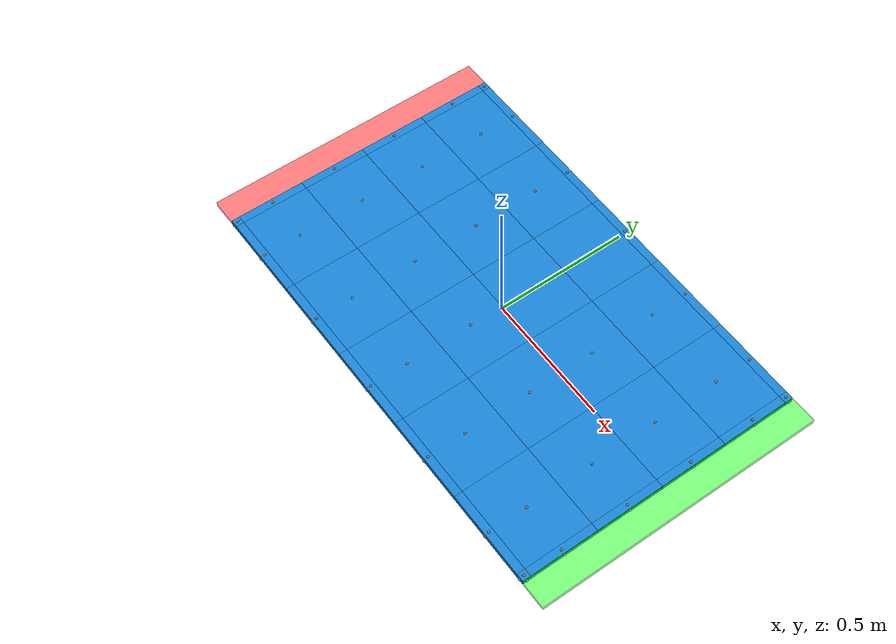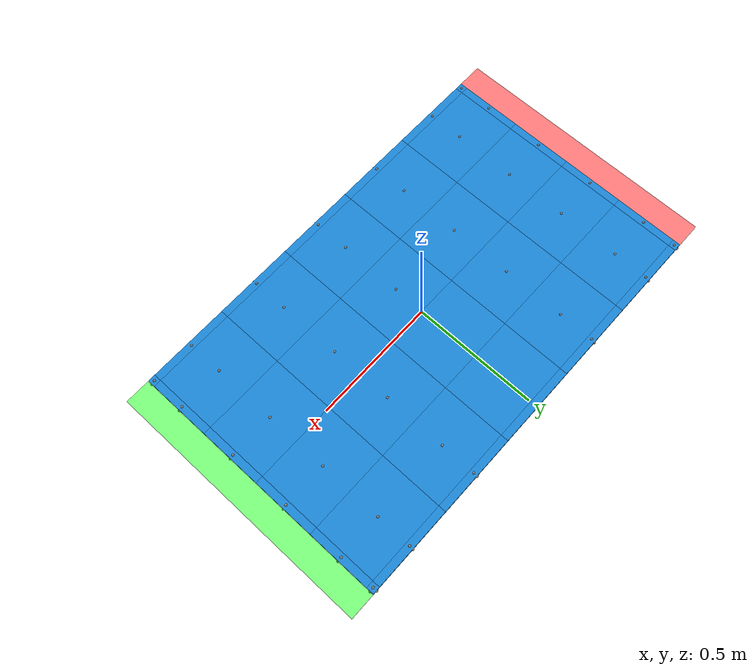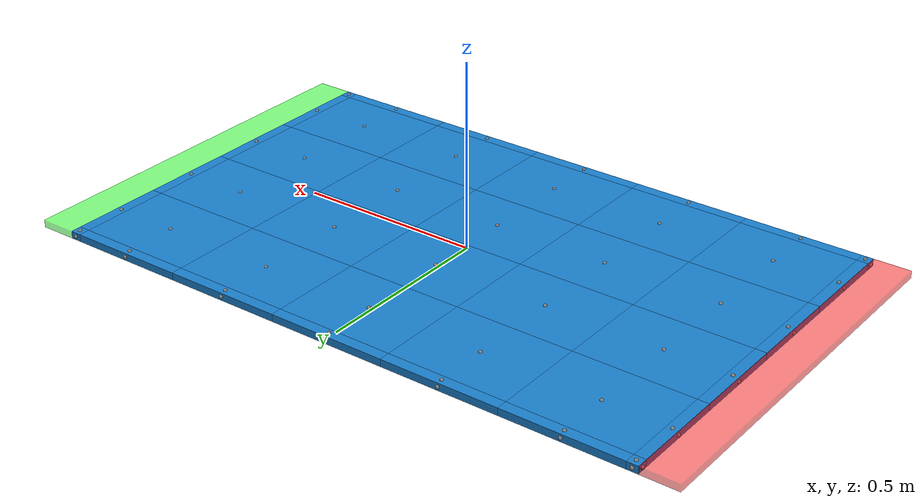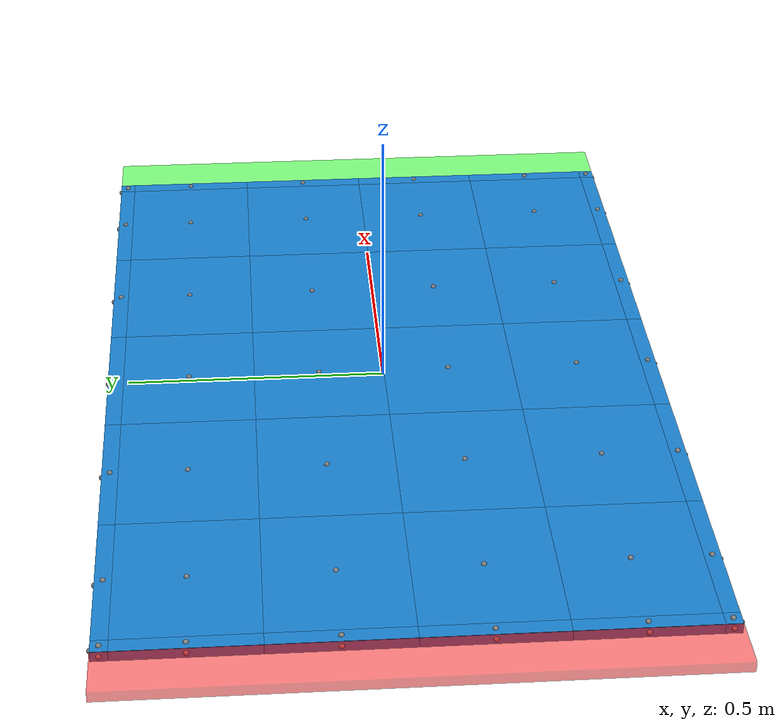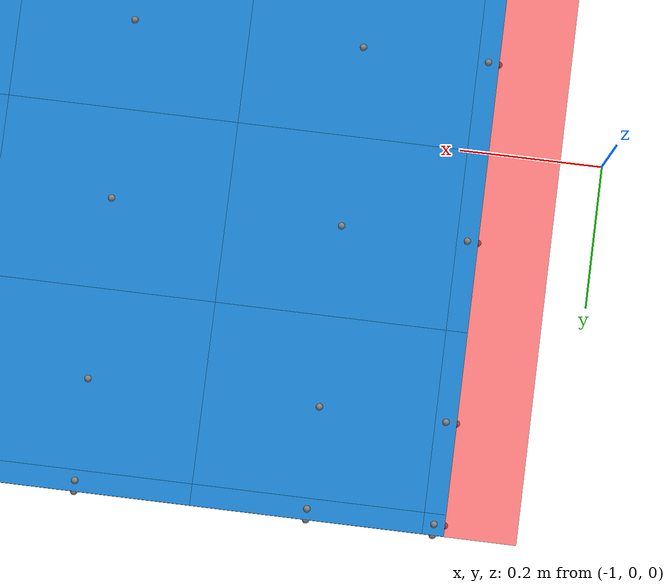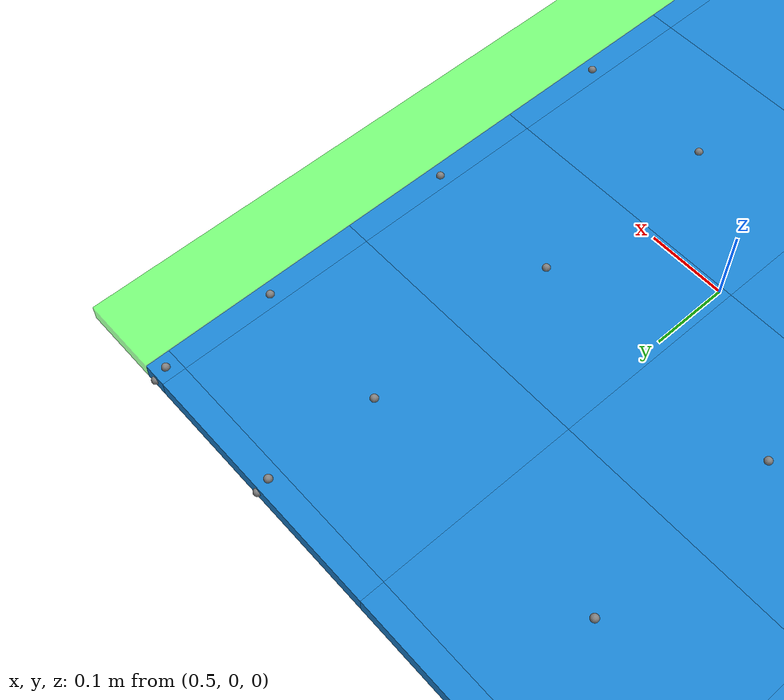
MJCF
<mujoco model="stiffness_test">
  <option integrator="implicitfast" timestep="0.001" gravity="0 0 0"><flag contact="enable"/></option>
  <default>
    <joint armature="0.01" damping="5.0"/>
    <geom friction="0.8" solref="0.02 1.0" solimp="0.9 0.95 0.001"/>
  </default>
  <worldbody>
    <light pos="0 0 5" dir="0 0 -1"/>
    <body name="BOpenCell">
      <body name="b_bopencell_0_0_0" pos="-0.82500 -0.52500 0.00000">
        <joint type="slide" axis="1 0 0"/>
        <joint type="slide" axis="0 1 0"/>
        <joint type="slide" axis="0 0 1"/>
        <joint type="ball"/>
        <geom type="box" size="0.01500 0.01500 0.01000" mass="0.002480" rgba="0.1 0.5 0.8 1.0" contype="4" conaffinity="2" friction="0.8" solref="0.002 1.0" solimp="0.9 0.95 0.001 0.5 2.0"/>
        <site name="s_BOpenCell_0_0_0_PX" pos="0.01500 0 0"/>
        <site name="s_BOpenCell_0_0_0_NX" pos="-0.01500 0 0"/>
        <site name="s_BOpenCell_0_0_0_PY" pos="0 0.01500 0"/>
        <site name="s_BOpenCell_0_0_0_NY" pos="0 -0.01500 0"/>
        <site name="s_BOpenCell_0_0_0_PZ" pos="0 0 0.01000"/>
        <site name="s_BOpenCell_0_0_0_NZ" pos="0 0 -0.01000"/>
      </body>
      <body name="b_bopencell_0_1_0" pos="-0.82500 -0.38250 0.00000">
        <joint type="slide" axis="1 0 0"/>
        <joint type="slide" axis="0 1 0"/>
        <joint type="slide" axis="0 0 1"/>
        <joint type="ball"/>
        <geom type="box" size="0.01500 0.12750 0.01000" mass="0.021081" rgba="0.1 0.5 0.8 1.0" contype="4" conaffinity="2" friction="0.8" solref="0.002 1.0" solimp="0.9 0.95 0.001 0.5 2.0"/>
        <site name="s_BOpenCell_0_1_0_PX" pos="0.01500 0 0"/>
        <site name="s_BOpenCell_0_1_0_NX" pos="-0.01500 0 0"/>
        <site name="s_BOpenCell_0_1_0_PY" pos="0 0.12750 0"/>
        <site name="s_BOpenCell_0_1_0_NY" pos="0 -0.12750 0"/>
        <site name="s_BOpenCell_0_1_0_PZ" pos="0 0 0.01000"/>
        <site name="s_BOpenCell_0_1_0_NZ" pos="0 0 -0.01000"/>
      </body>
      <body name="b_bopencell_0_2_0" pos="-0.82500 -0.12750 0.00000">
        <joint type="slide" axis="1 0 0"/>
        <joint type="slide" axis="0 1 0"/>
        <joint type="slide" axis="0 0 1"/>
        <joint type="ball"/>
        <geom type="box" size="0.01500 0.12750 0.01000" mass="0.021081" rgba="0.1 0.5 0.8 1.0" contype="4" conaffinity="2" friction="0.8" solref="0.002 1.0" solimp="0.9 0.95 0.001 0.5 2.0"/>
        <site name="s_BOpenCell_0_2_0_PX" pos="0.01500 0 0"/>
        <site name="s_BOpenCell_0_2_0_NX" pos="-0.01500 0 0"/>
        <site name="s_BOpenCell_0_2_0_PY" pos="0 0.12750 0"/>
        <site name="s_BOpenCell_0_2_0_NY" pos="0 -0.12750 0"/>
        <site name="s_BOpenCell_0_2_0_PZ" pos="0 0 0.01000"/>
        <site name="s_BOpenCell_0_2_0_NZ" pos="0 0 -0.01000"/>
      </body>
      <body name="b_bopencell_0_3_0" pos="-0.82500 0.12750 0.00000">
        <joint type="slide" axis="1 0 0"/>
        <joint type="slide" axis="0 1 0"/>
        <joint type="slide" axis="0 0 1"/>
        <joint type="ball"/>
        <geom type="box" size="0.01500 0.12750 0.01000" mass="0.021081" rgba="0.1 0.5 0.8 1.0" contype="4" conaffinity="2" friction="0.8" solref="0.002 1.0" solimp="0.9 0.95 0.001 0.5 2.0"/>
        <site name="s_BOpenCell_0_3_0_PX" pos="0.01500 0 0"/>
        <site name="s_BOpenCell_0_3_0_NX" pos="-0.01500 0 0"/>
        <site name="s_BOpenCell_0_3_0_PY" pos="0 0.12750 0"/>
        <site name="s_BOpenCell_0_3_0_NY" pos="0 -0.12750 0"/>
        <site name="s_BOpenCell_0_3_0_PZ" pos="0 0 0.01000"/>
        <site name="s_BOpenCell_0_3_0_NZ" pos="0 0 -0.01000"/>
      </body>
      <body name="b_bopencell_0_4_0" pos="-0.82500 0.38250 0.00000">
        <joint type="slide" axis="1 0 0"/>
        <joint type="slide" axis="0 1 0"/>
        <joint type="slide" axis="0 0 1"/>
        <joint type="ball"/>
        <geom type="box" size="0.01500 0.12750 0.01000" mass="0.021081" rgba="0.1 0.5 0.8 1.0" contype="4" conaffinity="2" friction="0.8" solref="0.002 1.0" solimp="0.9 0.95 0.001 0.5 2.0"/>
        <site name="s_BOpenCell_0_4_0_PX" pos="0.01500 0 0"/>
        <site name="s_BOpenCell_0_4_0_NX" pos="-0.01500 0 0"/>
        <site name="s_BOpenCell_0_4_0_PY" pos="0 0.12750 0"/>
        <site name="s_BOpenCell_0_4_0_NY" pos="0 -0.12750 0"/>
        <site name="s_BOpenCell_0_4_0_PZ" pos="0 0 0.01000"/>
        <site name="s_BOpenCell_0_4_0_NZ" pos="0 0 -0.01000"/>
      </body>
      <body name="b_bopencell_0_5_0" pos="-0.82500 0.52500 0.00000">
        <joint type="slide" axis="1 0 0"/>
        <joint type="slide" axis="0 1 0"/>
        <joint type="slide" axis="0 0 1"/>
        <joint type="ball"/>
        <geom type="box" size="0.01500 0.01500 0.01000" mass="0.002480" rgba="0.1 0.5 0.8 1.0" contype="4" conaffinity="2" friction="0.8" solref="0.002 1.0" solimp="0.9 0.95 0.001 0.5 2.0"/>
        <site name="s_BOpenCell_0_5_0_PX" pos="0.01500 0 0"/>
        <site name="s_BOpenCell_0_5_0_NX" pos="-0.01500 0 0"/>
        <site name="s_BOpenCell_0_5_0_PY" pos="0 0.01500 0"/>
        <site name="s_BOpenCell_0_5_0_NY" pos="0 -0.01500 0"/>
        <site name="s_BOpenCell_0_5_0_PZ" pos="0 0 0.01000"/>
        <site name="s_BOpenCell_0_5_0_NZ" pos="0 0 -0.01000"/>
      </body>
      <body name="b_bopencell_1_0_0" pos="-0.64800 -0.52500 0.00000">
        <joint type="slide" axis="1 0 0"/>
        <joint type="slide" axis="0 1 0"/>
        <joint type="slide" axis="0 0 1"/>
        <joint type="ball"/>
        <geom type="box" size="0.16200 0.01500 0.01000" mass="0.026786" rgba="0.1 0.5 0.8 1.0" contype="4" conaffinity="2" friction="0.8" solref="0.002 1.0" solimp="0.9 0.95 0.001 0.5 2.0"/>
        <site name="s_BOpenCell_1_0_0_PX" pos="0.16200 0 0"/>
        <site name="s_BOpenCell_1_0_0_NX" pos="-0.16200 0 0"/>
        <site name="s_BOpenCell_1_0_0_PY" pos="0 0.01500 0"/>
        <site name="s_BOpenCell_1_0_0_NY" pos="0 -0.01500 0"/>
        <site name="s_BOpenCell_1_0_0_PZ" pos="0 0 0.01000"/>
        <site name="s_BOpenCell_1_0_0_NZ" pos="0 0 -0.01000"/>
      </body>
      <body name="b_bopencell_1_1_0" pos="-0.64800 -0.38250 0.00000">
        <joint type="slide" axis="1 0 0"/>
        <joint type="slide" axis="0 1 0"/>
        <joint type="slide" axis="0 0 1"/>
        <joint type="ball"/>
        <geom type="box" size="0.16200 0.12750 0.01000" mass="0.227679" rgba="0.1 0.5 0.8 1.0" contype="4" conaffinity="2" friction="0.8" solref="0.002 1.0" solimp="0.9 0.95 0.001 0.5 2.0"/>
        <site name="s_BOpenCell_1_1_0_PX" pos="0.16200 0 0"/>
        <site name="s_BOpenCell_1_1_0_NX" pos="-0.16200 0 0"/>
        <site name="s_BOpenCell_1_1_0_PY" pos="0 0.12750 0"/>
        <site name="s_BOpenCell_1_1_0_NY" pos="0 -0.12750 0"/>
        <site name="s_BOpenCell_1_1_0_PZ" pos="0 0 0.01000"/>
        <site name="s_BOpenCell_1_1_0_NZ" pos="0 0 -0.01000"/>
      </body>
      <body name="b_bopencell_1_2_0" pos="-0.64800 -0.12750 0.00000">
        <joint type="slide" axis="1 0 0"/>
        <joint type="slide" axis="0 1 0"/>
        <joint type="slide" axis="0 0 1"/>
        <joint type="ball"/>
        <geom type="box" size="0.16200 0.12750 0.01000" mass="0.227679" rgba="0.1 0.5 0.8 1.0" contype="4" conaffinity="2" friction="0.8" solref="0.002 1.0" solimp="0.9 0.95 0.001 0.5 2.0"/>
        <site name="s_BOpenCell_1_2_0_PX" pos="0.16200 0 0"/>
        <site name="s_BOpenCell_1_2_0_NX" pos="-0.16200 0 0"/>
        <site name="s_BOpenCell_1_2_0_PY" pos="0 0.12750 0"/>
        <site name="s_BOpenCell_1_2_0_NY" pos="0 -0.12750 0"/>
        <site name="s_BOpenCell_1_2_0_PZ" pos="0 0 0.01000"/>
        <site name="s_BOpenCell_1_2_0_NZ" pos="0 0 -0.01000"/>
      </body>
      <body name="b_bopencell_1_3_0" pos="-0.64800 0.12750 0.00000">
        <joint type="slide" axis="1 0 0"/>
        <joint type="slide" axis="0 1 0"/>
        <joint type="slide" axis="0 0 1"/>
        <joint type="ball"/>
        <geom type="box" size="0.16200 0.12750 0.01000" mass="0.227679" rgba="0.1 0.5 0.8 1.0" contype="4" conaffinity="2" friction="0.8" solref="0.002 1.0" solimp="0.9 0.95 0.001 0.5 2.0"/>
        <site name="s_BOpenCell_1_3_0_PX" pos="0.16200 0 0"/>
        <site name="s_BOpenCell_1_3_0_NX" pos="-0.16200 0 0"/>
        <site name="s_BOpenCell_1_3_0_PY" pos="0 0.12750 0"/>
        <site name="s_BOpenCell_1_3_0_NY" pos="0 -0.12750 0"/>
        <site name="s_BOpenCell_1_3_0_PZ" pos="0 0 0.01000"/>
        <site name="s_BOpenCell_1_3_0_NZ" pos="0 0 -0.01000"/>
      </body>
      <body name="b_bopencell_1_4_0" pos="-0.64800 0.38250 0.00000">
        <joint type="slide" axis="1 0 0"/>
        <joint type="slide" axis="0 1 0"/>
        <joint type="slide" axis="0 0 1"/>
        <joint type="ball"/>
        <geom type="box" size="0.16200 0.12750 0.01000" mass="0.227679" rgba="0.1 0.5 0.8 1.0" contype="4" conaffinity="2" friction="0.8" solref="0.002 1.0" solimp="0.9 0.95 0.001 0.5 2.0"/>
        <site name="s_BOpenCell_1_4_0_PX" pos="0.16200 0 0"/>
        <site name="s_BOpenCell_1_4_0_NX" pos="-0.16200 0 0"/>
        <site name="s_BOpenCell_1_4_0_PY" pos="0 0.12750 0"/>
        <site name="s_BOpenCell_1_4_0_NY" pos="0 -0.12750 0"/>
        <site name="s_BOpenCell_1_4_0_PZ" pos="0 0 0.01000"/>
        <site name="s_BOpenCell_1_4_0_NZ" pos="0 0 -0.01000"/>
      </body>
      <body name="b_bopencell_1_5_0" pos="-0.64800 0.52500 0.00000">
        <joint type="slide" axis="1 0 0"/>
        <joint type="slide" axis="0 1 0"/>
        <joint type="slide" axis="0 0 1"/>
        <joint type="ball"/>
        <geom type="box" size="0.16200 0.01500 0.01000" mass="0.026786" rgba="0.1 0.5 0.8 1.0" contype="4" conaffinity="2" friction="0.8" solref="0.002 1.0" solimp="0.9 0.95 0.001 0.5 2.0"/>
        <site name="s_BOpenCell_1_5_0_PX" pos="0.16200 0 0"/>
        <site name="s_BOpenCell_1_5_0_NX" pos="-0.16200 0 0"/>
        <site name="s_BOpenCell_1_5_0_PY" pos="0 0.01500 0"/>
        <site name="s_BOpenCell_1_5_0_NY" pos="0 -0.01500 0"/>
        <site name="s_BOpenCell_1_5_0_PZ" pos="0 0 0.01000"/>
        <site name="s_BOpenCell_1_5_0_NZ" pos="0 0 -0.01000"/>
      </body>
      <body name="b_bopencell_2_0_0" pos="-0.32400 -0.52500 0.00000">
        <joint type="slide" axis="1 0 0"/>
        <joint type="slide" axis="0 1 0"/>
        <joint type="slide" axis="0 0 1"/>
        <joint type="ball"/>
        <geom type="box" size="0.16200 0.01500 0.01000" mass="0.026786" rgba="0.1 0.5 0.8 1.0" contype="4" conaffinity="2" friction="0.8" solref="0.002 1.0" solimp="0.9 0.95 0.001 0.5 2.0"/>
        <site name="s_BOpenCell_2_0_0_PX" pos="0.16200 0 0"/>
        <site name="s_BOpenCell_2_0_0_NX" pos="-0.16200 0 0"/>
        <site name="s_BOpenCell_2_0_0_PY" pos="0 0.01500 0"/>
        <site name="s_BOpenCell_2_0_0_NY" pos="0 -0.01500 0"/>
        <site name="s_BOpenCell_2_0_0_PZ" pos="0 0 0.01000"/>
        <site name="s_BOpenCell_2_0_0_NZ" pos="0 0 -0.01000"/>
      </body>
      <body name="b_bopencell_2_1_0" pos="-0.32400 -0.38250 0.00000">
        <joint type="slide" axis="1 0 0"/>
        <joint type="slide" axis="0 1 0"/>
        <joint type="slide" axis="0 0 1"/>
        <joint type="ball"/>
        <geom type="box" size="0.16200 0.12750 0.01000" mass="0.227679" rgba="0.1 0.5 0.8 1.0" contype="4" conaffinity="2" friction="0.8" solref="0.002 1.0" solimp="0.9 0.95 0.001 0.5 2.0"/>
        <site name="s_BOpenCell_2_1_0_PX" pos="0.16200 0 0"/>
        <site name="s_BOpenCell_2_1_0_NX" pos="-0.16200 0 0"/>
        <site name="s_BOpenCell_2_1_0_PY" pos="0 0.12750 0"/>
        <site name="s_BOpenCell_2_1_0_NY" pos="0 -0.12750 0"/>
        <site name="s_BOpenCell_2_1_0_PZ" pos="0 0 0.01000"/>
        <site name="s_BOpenCell_2_1_0_NZ" pos="0 0 -0.01000"/>
      </body>
      <body name="b_bopencell_2_2_0" pos="-0.32400 -0.12750 0.00000">
        <joint type="slide" axis="1 0 0"/>
        <joint type="slide" axis="0 1 0"/>
        <joint type="slide" axis="0 0 1"/>
        <joint type="ball"/>
        <geom type="box" size="0.16200 0.12750 0.01000" mass="0.227679" rgba="0.1 0.5 0.8 1.0" contype="4" conaffinity="2" friction="0.8" solref="0.002 1.0" solimp="0.9 0.95 0.001 0.5 2.0"/>
        <site name="s_BOpenCell_2_2_0_PX" pos="0.16200 0 0"/>
        <site name="s_BOpenCell_2_2_0_NX" pos="-0.16200 0 0"/>
        <site name="s_BOpenCell_2_2_0_PY" pos="0 0.12750 0"/>
        <site name="s_BOpenCell_2_2_0_NY" pos="0 -0.12750 0"/>
        <site name="s_BOpenCell_2_2_0_PZ" pos="0 0 0.01000"/>
        <site name="s_BOpenCell_2_2_0_NZ" pos="0 0 -0.01000"/>
      </body>
      <body name="b_bopencell_2_3_0" pos="-0.32400 0.12750 0.00000">
        <joint type="slide" axis="1 0 0"/>
        <joint type="slide" axis="0 1 0"/>
        <joint type="slide" axis="0 0 1"/>
        <joint type="ball"/>
        <geom type="box" size="0.16200 0.12750 0.01000" mass="0.227679" rgba="0.1 0.5 0.8 1.0" contype="4" conaffinity="2" friction="0.8" solref="0.002 1.0" solimp="0.9 0.95 0.001 0.5 2.0"/>
        <site name="s_BOpenCell_2_3_0_PX" pos="0.16200 0 0"/>
        <site name="s_BOpenCell_2_3_0_NX" pos="-0.16200 0 0"/>
        <site name="s_BOpenCell_2_3_0_PY" pos="0 0.12750 0"/>
        <site name="s_BOpenCell_2_3_0_NY" pos="0 -0.12750 0"/>
        <site name="s_BOpenCell_2_3_0_PZ" pos="0 0 0.01000"/>
        <site name="s_BOpenCell_2_3_0_NZ" pos="0 0 -0.01000"/>
      </body>
      <body name="b_bopencell_2_4_0" pos="-0.32400 0.38250 0.00000">
        <joint type="slide" axis="1 0 0"/>
        <joint type="slide" axis="0 1 0"/>
        <joint type="slide" axis="0 0 1"/>
        <joint type="ball"/>
        <geom type="box" size="0.16200 0.12750 0.01000" mass="0.227679" rgba="0.1 0.5 0.8 1.0" contype="4" conaffinity="2" friction="0.8" solref="0.002 1.0" solimp="0.9 0.95 0.001 0.5 2.0"/>
        <site name="s_BOpenCell_2_4_0_PX" pos="0.16200 0 0"/>
        <site name="s_BOpenCell_2_4_0_NX" pos="-0.16200 0 0"/>
        <site name="s_BOpenCell_2_4_0_PY" pos="0 0.12750 0"/>
        <site name="s_BOpenCell_2_4_0_NY" pos="0 -0.12750 0"/>
        <site name="s_BOpenCell_2_4_0_PZ" pos="0 0 0.01000"/>
        <site name="s_BOpenCell_2_4_0_NZ" pos="0 0 -0.01000"/>
      </body>
      <body name="b_bopencell_2_5_0" pos="-0.32400 0.52500 0.00000">
        <joint type="slide" axis="1 0 0"/>
        <joint type="slide" axis="0 1 0"/>
        <joint type="slide" axis="0 0 1"/>
        <joint type="ball"/>
        <geom type="box" size="0.16200 0.01500 0.01000" mass="0.026786" rgba="0.1 0.5 0.8 1.0" contype="4" conaffinity="2" friction="0.8" solref="0.002 1.0" solimp="0.9 0.95 0.001 0.5 2.0"/>
        <site name="s_BOpenCell_2_5_0_PX" pos="0.16200 0 0"/>
        <site name="s_BOpenCell_2_5_0_NX" pos="-0.16200 0 0"/>
        <site name="s_BOpenCell_2_5_0_PY" pos="0 0.01500 0"/>
        <site name="s_BOpenCell_2_5_0_NY" pos="0 -0.01500 0"/>
        <site name="s_BOpenCell_2_5_0_PZ" pos="0 0 0.01000"/>
        <site name="s_BOpenCell_2_5_0_NZ" pos="0 0 -0.01000"/>
      </body>
      <body name="b_bopencell_3_0_0" pos="0.00000 -0.52500 0.00000">
        <joint type="slide" axis="1 0 0"/>
        <joint type="slide" axis="0 1 0"/>
        <joint type="slide" axis="0 0 1"/>
        <joint type="ball"/>
        <geom type="box" size="0.16200 0.01500 0.01000" mass="0.026786" rgba="0.1 0.5 0.8 1.0" contype="4" conaffinity="2" friction="0.8" solref="0.002 1.0" solimp="0.9 0.95 0.001 0.5 2.0"/>
        <site name="s_BOpenCell_3_0_0_PX" pos="0.16200 0 0"/>
        <site name="s_BOpenCell_3_0_0_NX" pos="-0.16200 0 0"/>
        <site name="s_BOpenCell_3_0_0_PY" pos="0 0.01500 0"/>
        <site name="s_BOpenCell_3_0_0_NY" pos="0 -0.01500 0"/>
        <site name="s_BOpenCell_3_0_0_PZ" pos="0 0 0.01000"/>
        <site name="s_BOpenCell_3_0_0_NZ" pos="0 0 -0.01000"/>
      </body>
      <body name="b_bopencell_3_1_0" pos="0.00000 -0.38250 0.00000">
        <joint type="slide" axis="1 0 0"/>
        <joint type="slide" axis="0 1 0"/>
        <joint type="slide" axis="0 0 1"/>
        <joint type="ball"/>
        <geom type="box" size="0.16200 0.12750 0.01000" mass="0.227679" rgba="0.1 0.5 0.8 1.0" contype="4" conaffinity="2" friction="0.8" solref="0.002 1.0" solimp="0.9 0.95 0.001 0.5 2.0"/>
        <site name="s_BOpenCell_3_1_0_PX" pos="0.16200 0 0"/>
        <site name="s_BOpenCell_3_1_0_NX" pos="-0.16200 0 0"/>
        <site name="s_BOpenCell_3_1_0_PY" pos="0 0.12750 0"/>
        <site name="s_BOpenCell_3_1_0_NY" pos="0 -0.12750 0"/>
        <site name="s_BOpenCell_3_1_0_PZ" pos="0 0 0.01000"/>
        <site name="s_BOpenCell_3_1_0_NZ" pos="0 0 -0.01000"/>
      </body>
      <body name="b_bopencell_3_2_0" pos="0.00000 -0.12750 0.00000">
        <joint type="slide" axis="1 0 0"/>
        <joint type="slide" axis="0 1 0"/>
        <joint type="slide" axis="0 0 1"/>
        <joint type="ball"/>
        <geom type="box" size="0.16200 0.12750 0.01000" mass="0.227679" rgba="0.1 0.5 0.8 1.0" contype="4" conaffinity="2" friction="0.8" solref="0.002 1.0" solimp="0.9 0.95 0.001 0.5 2.0"/>
        <site name="s_BOpenCell_3_2_0_PX" pos="0.16200 0 0"/>
        <site name="s_BOpenCell_3_2_0_NX" pos="-0.16200 0 0"/>
        <site name="s_BOpenCell_3_2_0_PY" pos="0 0.12750 0"/>
        <site name="s_BOpenCell_3_2_0_NY" pos="0 -0.12750 0"/>
        <site name="s_BOpenCell_3_2_0_PZ" pos="0 0 0.01000"/>
        <site name="s_BOpenCell_3_2_0_NZ" pos="0 0 -0.01000"/>
      </body>
      <body name="b_bopencell_3_3_0" pos="0.00000 0.12750 0.00000">
        <joint type="slide" axis="1 0 0"/>
        <joint type="slide" axis="0 1 0"/>
        <joint type="slide" axis="0 0 1"/>
        <joint type="ball"/>
        <geom type="box" size="0.16200 0.12750 0.01000" mass="0.227679" rgba="0.1 0.5 0.8 1.0" contype="4" conaffinity="2" friction="0.8" solref="0.002 1.0" solimp="0.9 0.95 0.001 0.5 2.0"/>
        <site name="s_BOpenCell_3_3_0_PX" pos="0.16200 0 0"/>
        <site name="s_BOpenCell_3_3_0_NX" pos="-0.16200 0 0"/>
        <site name="s_BOpenCell_3_3_0_PY" pos="0 0.12750 0"/>
        <site name="s_BOpenCell_3_3_0_NY" pos="0 -0.12750 0"/>
        <site name="s_BOpenCell_3_3_0_PZ" pos="0 0 0.01000"/>
        <site name="s_BOpenCell_3_3_0_NZ" pos="0 0 -0.01000"/>
      </body>
      <body name="b_bopencell_3_4_0" pos="0.00000 0.38250 0.00000">
        <joint type="slide" axis="1 0 0"/>
        <joint type="slide" axis="0 1 0"/>
        <joint type="slide" axis="0 0 1"/>
        <joint type="ball"/>
        <geom type="box" size="0.16200 0.12750 0.01000" mass="0.227679" rgba="0.1 0.5 0.8 1.0" contype="4" conaffinity="2" friction="0.8" solref="0.002 1.0" solimp="0.9 0.95 0.001 0.5 2.0"/>
        <site name="s_BOpenCell_3_4_0_PX" pos="0.16200 0 0"/>
        <site name="s_BOpenCell_3_4_0_NX" pos="-0.16200 0 0"/>
        <site name="s_BOpenCell_3_4_0_PY" pos="0 0.12750 0"/>
        <site name="s_BOpenCell_3_4_0_NY" pos="0 -0.12750 0"/>
        <site name="s_BOpenCell_3_4_0_PZ" pos="0 0 0.01000"/>
        <site name="s_BOpenCell_3_4_0_NZ" pos="0 0 -0.01000"/>
      </body>
      <body name="b_bopencell_3_5_0" pos="0.00000 0.52500 0.00000">
        <joint type="slide" axis="1 0 0"/>
        <joint type="slide" axis="0 1 0"/>
        <joint type="slide" axis="0 0 1"/>
        <joint type="ball"/>
        <geom type="box" size="0.16200 0.01500 0.01000" mass="0.026786" rgba="0.1 0.5 0.8 1.0" contype="4" conaffinity="2" friction="0.8" solref="0.002 1.0" solimp="0.9 0.95 0.001 0.5 2.0"/>
        <site name="s_BOpenCell_3_5_0_PX" pos="0.16200 0 0"/>
        <site name="s_BOpenCell_3_5_0_NX" pos="-0.16200 0 0"/>
        <site name="s_BOpenCell_3_5_0_PY" pos="0 0.01500 0"/>
        <site name="s_BOpenCell_3_5_0_NY" pos="0 -0.01500 0"/>
        <site name="s_BOpenCell_3_5_0_PZ" pos="0 0 0.01000"/>
        <site name="s_BOpenCell_3_5_0_NZ" pos="0 0 -0.01000"/>
      </body>
      <body name="b_bopencell_4_0_0" pos="0.32400 -0.52500 0.00000">
        <joint type="slide" axis="1 0 0"/>
        <joint type="slide" axis="0 1 0"/>
        <joint type="slide" axis="0 0 1"/>
        <joint type="ball"/>
        <geom type="box" size="0.16200 0.01500 0.01000" mass="0.026786" rgba="0.1 0.5 0.8 1.0" contype="4" conaffinity="2" friction="0.8" solref="0.002 1.0" solimp="0.9 0.95 0.001 0.5 2.0"/>
        <site name="s_BOpenCell_4_0_0_PX" pos="0.16200 0 0"/>
        <site name="s_BOpenCell_4_0_0_NX" pos="-0.16200 0 0"/>
        <site name="s_BOpenCell_4_0_0_PY" pos="0 0.01500 0"/>
        <site name="s_BOpenCell_4_0_0_NY" pos="0 -0.01500 0"/>
        <site name="s_BOpenCell_4_0_0_PZ" pos="0 0 0.01000"/>
        <site name="s_BOpenCell_4_0_0_NZ" pos="0 0 -0.01000"/>
      </body>
      <body name="b_bopencell_4_1_0" pos="0.32400 -0.38250 0.00000">
        <joint type="slide" axis="1 0 0"/>
        <joint type="slide" axis="0 1 0"/>
        <joint type="slide" axis="0 0 1"/>
        <joint type="ball"/>
        <geom type="box" size="0.16200 0.12750 0.01000" mass="0.227679" rgba="0.1 0.5 0.8 1.0" contype="4" conaffinity="2" friction="0.8" solref="0.002 1.0" solimp="0.9 0.95 0.001 0.5 2.0"/>
        <site name="s_BOpenCell_4_1_0_PX" pos="0.16200 0 0"/>
        <site name="s_BOpenCell_4_1_0_NX" pos="-0.16200 0 0"/>
        <site name="s_BOpenCell_4_1_0_PY" pos="0 0.12750 0"/>
        <site name="s_BOpenCell_4_1_0_NY" pos="0 -0.12750 0"/>
        <site name="s_BOpenCell_4_1_0_PZ" pos="0 0 0.01000"/>
        <site name="s_BOpenCell_4_1_0_NZ" pos="0 0 -0.01000"/>
      </body>
      <body name="b_bopencell_4_2_0" pos="0.32400 -0.12750 0.00000">
        <joint type="slide" axis="1 0 0"/>
        <joint type="slide" axis="0 1 0"/>
        <joint type="slide" axis="0 0 1"/>
        <joint type="ball"/>
        <geom type="box" size="0.16200 0.12750 0.01000" mass="0.227679" rgba="0.1 0.5 0.8 1.0" contype="4" conaffinity="2" friction="0.8" solref="0.002 1.0" solimp="0.9 0.95 0.001 0.5 2.0"/>
        <site name="s_BOpenCell_4_2_0_PX" pos="0.16200 0 0"/>
        <site name="s_BOpenCell_4_2_0_NX" pos="-0.16200 0 0"/>
        <site name="s_BOpenCell_4_2_0_PY" pos="0 0.12750 0"/>
        <site name="s_BOpenCell_4_2_0_NY" pos="0 -0.12750 0"/>
        <site name="s_BOpenCell_4_2_0_PZ" pos="0 0 0.01000"/>
        <site name="s_BOpenCell_4_2_0_NZ" pos="0 0 -0.01000"/>
      </body>
      <body name="b_bopencell_4_3_0" pos="0.32400 0.12750 0.00000">
        <joint type="slide" axis="1 0 0"/>
        <joint type="slide" axis="0 1 0"/>
        <joint type="slide" axis="0 0 1"/>
        <joint type="ball"/>
        <geom type="box" size="0.16200 0.12750 0.01000" mass="0.227679" rgba="0.1 0.5 0.8 1.0" contype="4" conaffinity="2" friction="0.8" solref="0.002 1.0" solimp="0.9 0.95 0.001 0.5 2.0"/>
        <site name="s_BOpenCell_4_3_0_PX" pos="0.16200 0 0"/>
        <site name="s_BOpenCell_4_3_0_NX" pos="-0.16200 0 0"/>
        <site name="s_BOpenCell_4_3_0_PY" pos="0 0.12750 0"/>
        <site name="s_BOpenCell_4_3_0_NY" pos="0 -0.12750 0"/>
        <site name="s_BOpenCell_4_3_0_PZ" pos="0 0 0.01000"/>
        <site name="s_BOpenCell_4_3_0_NZ" pos="0 0 -0.01000"/>
      </body>
      <body name="b_bopencell_4_4_0" pos="0.32400 0.38250 0.00000">
        <joint type="slide" axis="1 0 0"/>
        <joint type="slide" axis="0 1 0"/>
        <joint type="slide" axis="0 0 1"/>
        <joint type="ball"/>
        <geom type="box" size="0.16200 0.12750 0.01000" mass="0.227679" rgba="0.1 0.5 0.8 1.0" contype="4" conaffinity="2" friction="0.8" solref="0.002 1.0" solimp="0.9 0.95 0.001 0.5 2.0"/>
        <site name="s_BOpenCell_4_4_0_PX" pos="0.16200 0 0"/>
        <site name="s_BOpenCell_4_4_0_NX" pos="-0.16200 0 0"/>
        <site name="s_BOpenCell_4_4_0_PY" pos="0 0.12750 0"/>
        <site name="s_BOpenCell_4_4_0_NY" pos="0 -0.12750 0"/>
        <site name="s_BOpenCell_4_4_0_PZ" pos="0 0 0.01000"/>
        <site name="s_BOpenCell_4_4_0_NZ" pos="0 0 -0.01000"/>
      </body>
      <body name="b_bopencell_4_5_0" pos="0.32400 0.52500 0.00000">
        <joint type="slide" axis="1 0 0"/>
        <joint type="slide" axis="0 1 0"/>
        <joint type="slide" axis="0 0 1"/>
        <joint type="ball"/>
        <geom type="box" size="0.16200 0.01500 0.01000" mass="0.026786" rgba="0.1 0.5 0.8 1.0" contype="4" conaffinity="2" friction="0.8" solref="0.002 1.0" solimp="0.9 0.95 0.001 0.5 2.0"/>
        <site name="s_BOpenCell_4_5_0_PX" pos="0.16200 0 0"/>
        <site name="s_BOpenCell_4_5_0_NX" pos="-0.16200 0 0"/>
        <site name="s_BOpenCell_4_5_0_PY" pos="0 0.01500 0"/>
        <site name="s_BOpenCell_4_5_0_NY" pos="0 -0.01500 0"/>
        <site name="s_BOpenCell_4_5_0_PZ" pos="0 0 0.01000"/>
        <site name="s_BOpenCell_4_5_0_NZ" pos="0 0 -0.01000"/>
      </body>
      <body name="b_bopencell_5_0_0" pos="0.64800 -0.52500 0.00000">
        <joint type="slide" axis="1 0 0"/>
        <joint type="slide" axis="0 1 0"/>
        <joint type="slide" axis="0 0 1"/>
        <joint type="ball"/>
        <geom type="box" size="0.16200 0.01500 0.01000" mass="0.026786" rgba="0.1 0.5 0.8 1.0" contype="4" conaffinity="2" friction="0.8" solref="0.002 1.0" solimp="0.9 0.95 0.001 0.5 2.0"/>
        <site name="s_BOpenCell_5_0_0_PX" pos="0.16200 0 0"/>
        <site name="s_BOpenCell_5_0_0_NX" pos="-0.16200 0 0"/>
        <site name="s_BOpenCell_5_0_0_PY" pos="0 0.01500 0"/>
        <site name="s_BOpenCell_5_0_0_NY" pos="0 -0.01500 0"/>
        <site name="s_BOpenCell_5_0_0_PZ" pos="0 0 0.01000"/>
        <site name="s_BOpenCell_5_0_0_NZ" pos="0 0 -0.01000"/>
      </body>
      <body name="b_bopencell_5_1_0" pos="0.64800 -0.38250 0.00000">
        <joint type="slide" axis="1 0 0"/>
        <joint type="slide" axis="0 1 0"/>
        <joint type="slide" axis="0 0 1"/>
        <joint type="ball"/>
        <geom type="box" size="0.16200 0.12750 0.01000" mass="0.227679" rgba="0.1 0.5 0.8 1.0" contype="4" conaffinity="2" friction="0.8" solref="0.002 1.0" solimp="0.9 0.95 0.001 0.5 2.0"/>
        <site name="s_BOpenCell_5_1_0_PX" pos="0.16200 0 0"/>
        <site name="s_BOpenCell_5_1_0_NX" pos="-0.16200 0 0"/>
        <site name="s_BOpenCell_5_1_0_PY" pos="0 0.12750 0"/>
        <site name="s_BOpenCell_5_1_0_NY" pos="0 -0.12750 0"/>
        <site name="s_BOpenCell_5_1_0_PZ" pos="0 0 0.01000"/>
        <site name="s_BOpenCell_5_1_0_NZ" pos="0 0 -0.01000"/>
      </body>
      <body name="b_bopencell_5_2_0" pos="0.64800 -0.12750 0.00000">
        <joint type="slide" axis="1 0 0"/>
        <joint type="slide" axis="0 1 0"/>
        <joint type="slide" axis="0 0 1"/>
        <joint type="ball"/>
        <geom type="box" size="0.16200 0.12750 0.01000" mass="0.227679" rgba="0.1 0.5 0.8 1.0" contype="4" conaffinity="2" friction="0.8" solref="0.002 1.0" solimp="0.9 0.95 0.001 0.5 2.0"/>
        <site name="s_BOpenCell_5_2_0_PX" pos="0.16200 0 0"/>
        <site name="s_BOpenCell_5_2_0_NX" pos="-0.16200 0 0"/>
        <site name="s_BOpenCell_5_2_0_PY" pos="0 0.12750 0"/>
        <site name="s_BOpenCell_5_2_0_NY" pos="0 -0.12750 0"/>
        <site name="s_BOpenCell_5_2_0_PZ" pos="0 0 0.01000"/>
        <site name="s_BOpenCell_5_2_0_NZ" pos="0 0 -0.01000"/>
      </body>
      <body name="b_bopencell_5_3_0" pos="0.64800 0.12750 0.00000">
        <joint type="slide" axis="1 0 0"/>
        <joint type="slide" axis="0 1 0"/>
        <joint type="slide" axis="0 0 1"/>
        <joint type="ball"/>
        <geom type="box" size="0.16200 0.12750 0.01000" mass="0.227679" rgba="0.1 0.5 0.8 1.0" contype="4" conaffinity="2" friction="0.8" solref="0.002 1.0" solimp="0.9 0.95 0.001 0.5 2.0"/>
        <site name="s_BOpenCell_5_3_0_PX" pos="0.16200 0 0"/>
        <site name="s_BOpenCell_5_3_0_NX" pos="-0.16200 0 0"/>
        <site name="s_BOpenCell_5_3_0_PY" pos="0 0.12750 0"/>
        <site name="s_BOpenCell_5_3_0_NY" pos="0 -0.12750 0"/>
        <site name="s_BOpenCell_5_3_0_PZ" pos="0 0 0.01000"/>
        <site name="s_BOpenCell_5_3_0_NZ" pos="0 0 -0.01000"/>
      </body>
      <body name="b_bopencell_5_4_0" pos="0.64800 0.38250 0.00000">
        <joint type="slide" axis="1 0 0"/>
        <joint type="slide" axis="0 1 0"/>
        <joint type="slide" axis="0 0 1"/>
        <joint type="ball"/>
        <geom type="box" size="0.16200 0.12750 0.01000" mass="0.227679" rgba="0.1 0.5 0.8 1.0" contype="4" conaffinity="2" friction="0.8" solref="0.002 1.0" solimp="0.9 0.95 0.001 0.5 2.0"/>
        <site name="s_BOpenCell_5_4_0_PX" pos="0.16200 0 0"/>
        <site name="s_BOpenCell_5_4_0_NX" pos="-0.16200 0 0"/>
        <site name="s_BOpenCell_5_4_0_PY" pos="0 0.12750 0"/>
        <site name="s_BOpenCell_5_4_0_NY" pos="0 -0.12750 0"/>
        <site name="s_BOpenCell_5_4_0_PZ" pos="0 0 0.01000"/>
        <site name="s_BOpenCell_5_4_0_NZ" pos="0 0 -0.01000"/>
      </body>
      <body name="b_bopencell_5_5_0" pos="0.64800 0.52500 0.00000">
        <joint type="slide" axis="1 0 0"/>
        <joint type="slide" axis="0 1 0"/>
        <joint type="slide" axis="0 0 1"/>
        <joint type="ball"/>
        <geom type="box" size="0.16200 0.01500 0.01000" mass="0.026786" rgba="0.1 0.5 0.8 1.0" contype="4" conaffinity="2" friction="0.8" solref="0.002 1.0" solimp="0.9 0.95 0.001 0.5 2.0"/>
        <site name="s_BOpenCell_5_5_0_PX" pos="0.16200 0 0"/>
        <site name="s_BOpenCell_5_5_0_NX" pos="-0.16200 0 0"/>
        <site name="s_BOpenCell_5_5_0_PY" pos="0 0.01500 0"/>
        <site name="s_BOpenCell_5_5_0_NY" pos="0 -0.01500 0"/>
        <site name="s_BOpenCell_5_5_0_PZ" pos="0 0 0.01000"/>
        <site name="s_BOpenCell_5_5_0_NZ" pos="0 0 -0.01000"/>
      </body>
      <body name="b_bopencell_6_0_0" pos="0.82500 -0.52500 0.00000">
        <joint type="slide" axis="1 0 0"/>
        <joint type="slide" axis="0 1 0"/>
        <joint type="slide" axis="0 0 1"/>
        <joint type="ball"/>
        <geom type="box" size="0.01500 0.01500 0.01000" mass="0.002480" rgba="0.1 0.5 0.8 1.0" contype="4" conaffinity="2" friction="0.8" solref="0.002 1.0" solimp="0.9 0.95 0.001 0.5 2.0"/>
        <site name="s_BOpenCell_6_0_0_PX" pos="0.01500 0 0"/>
        <site name="s_BOpenCell_6_0_0_NX" pos="-0.01500 0 0"/>
        <site name="s_BOpenCell_6_0_0_PY" pos="0 0.01500 0"/>
        <site name="s_BOpenCell_6_0_0_NY" pos="0 -0.01500 0"/>
        <site name="s_BOpenCell_6_0_0_PZ" pos="0 0 0.01000"/>
        <site name="s_BOpenCell_6_0_0_NZ" pos="0 0 -0.01000"/>
      </body>
      <body name="b_bopencell_6_1_0" pos="0.82500 -0.38250 0.00000">
        <joint type="slide" axis="1 0 0"/>
        <joint type="slide" axis="0 1 0"/>
        <joint type="slide" axis="0 0 1"/>
        <joint type="ball"/>
        <geom type="box" size="0.01500 0.12750 0.01000" mass="0.021081" rgba="0.1 0.5 0.8 1.0" contype="4" conaffinity="2" friction="0.8" solref="0.002 1.0" solimp="0.9 0.95 0.001 0.5 2.0"/>
        <site name="s_BOpenCell_6_1_0_PX" pos="0.01500 0 0"/>
        <site name="s_BOpenCell_6_1_0_NX" pos="-0.01500 0 0"/>
        <site name="s_BOpenCell_6_1_0_PY" pos="0 0.12750 0"/>
        <site name="s_BOpenCell_6_1_0_NY" pos="0 -0.12750 0"/>
        <site name="s_BOpenCell_6_1_0_PZ" pos="0 0 0.01000"/>
        <site name="s_BOpenCell_6_1_0_NZ" pos="0 0 -0.01000"/>
      </body>
      <body name="b_bopencell_6_2_0" pos="0.82500 -0.12750 0.00000">
        <joint type="slide" axis="1 0 0"/>
        <joint type="slide" axis="0 1 0"/>
        <joint type="slide" axis="0 0 1"/>
        <joint type="ball"/>
        <geom type="box" size="0.01500 0.12750 0.01000" mass="0.021081" rgba="0.1 0.5 0.8 1.0" contype="4" conaffinity="2" friction="0.8" solref="0.002 1.0" solimp="0.9 0.95 0.001 0.5 2.0"/>
        <site name="s_BOpenCell_6_2_0_PX" pos="0.01500 0 0"/>
        <site name="s_BOpenCell_6_2_0_NX" pos="-0.01500 0 0"/>
        <site name="s_BOpenCell_6_2_0_PY" pos="0 0.12750 0"/>
        <site name="s_BOpenCell_6_2_0_NY" pos="0 -0.12750 0"/>
        <site name="s_BOpenCell_6_2_0_PZ" pos="0 0 0.01000"/>
        <site name="s_BOpenCell_6_2_0_NZ" pos="0 0 -0.01000"/>
      </body>
      <body name="b_bopencell_6_3_0" pos="0.82500 0.12750 0.00000">
        <joint type="slide" axis="1 0 0"/>
        <joint type="slide" axis="0 1 0"/>
        <joint type="slide" axis="0 0 1"/>
        <joint type="ball"/>
        <geom type="box" size="0.01500 0.12750 0.01000" mass="0.021081" rgba="0.1 0.5 0.8 1.0" contype="4" conaffinity="2" friction="0.8" solref="0.002 1.0" solimp="0.9 0.95 0.001 0.5 2.0"/>
        <site name="s_BOpenCell_6_3_0_PX" pos="0.01500 0 0"/>
        <site name="s_BOpenCell_6_3_0_NX" pos="-0.01500 0 0"/>
        <site name="s_BOpenCell_6_3_0_PY" pos="0 0.12750 0"/>
        <site name="s_BOpenCell_6_3_0_NY" pos="0 -0.12750 0"/>
        <site name="s_BOpenCell_6_3_0_PZ" pos="0 0 0.01000"/>
        <site name="s_BOpenCell_6_3_0_NZ" pos="0 0 -0.01000"/>
      </body>
      <body name="b_bopencell_6_4_0" pos="0.82500 0.38250 0.00000">
        <joint type="slide" axis="1 0 0"/>
        <joint type="slide" axis="0 1 0"/>
        <joint type="slide" axis="0 0 1"/>
        <joint type="ball"/>
        <geom type="box" size="0.01500 0.12750 0.01000" mass="0.021081" rgba="0.1 0.5 0.8 1.0" contype="4" conaffinity="2" friction="0.8" solref="0.002 1.0" solimp="0.9 0.95 0.001 0.5 2.0"/>
        <site name="s_BOpenCell_6_4_0_PX" pos="0.01500 0 0"/>
        <site name="s_BOpenCell_6_4_0_NX" pos="-0.01500 0 0"/>
        <site name="s_BOpenCell_6_4_0_PY" pos="0 0.12750 0"/>
        <site name="s_BOpenCell_6_4_0_NY" pos="0 -0.12750 0"/>
        <site name="s_BOpenCell_6_4_0_PZ" pos="0 0 0.01000"/>
        <site name="s_BOpenCell_6_4_0_NZ" pos="0 0 -0.01000"/>
      </body>
      <body name="b_bopencell_6_5_0" pos="0.82500 0.52500 0.00000">
        <joint type="slide" axis="1 0 0"/>
        <joint type="slide" axis="0 1 0"/>
        <joint type="slide" axis="0 0 1"/>
        <joint type="ball"/>
        <geom type="box" size="0.01500 0.01500 0.01000" mass="0.002480" rgba="0.1 0.5 0.8 1.0" contype="4" conaffinity="2" friction="0.8" solref="0.002 1.0" solimp="0.9 0.95 0.001 0.5 2.0"/>
        <site name="s_BOpenCell_6_5_0_PX" pos="0.01500 0 0"/>
        <site name="s_BOpenCell_6_5_0_NX" pos="-0.01500 0 0"/>
        <site name="s_BOpenCell_6_5_0_PY" pos="0 0.01500 0"/>
        <site name="s_BOpenCell_6_5_0_NY" pos="0 -0.01500 0"/>
        <site name="s_BOpenCell_6_5_0_PZ" pos="0 0 0.01000"/>
        <site name="s_BOpenCell_6_5_0_NZ" pos="0 0 -0.01000"/>
      </body>
    </body>
    <body name="clamp_L" pos="-0.8909999999999999 0 0"><geom type="box" size="0.05 0.5399999999999999 0.01" rgba="1 0 0 0.5"/></body>
    <body name="ram" pos="0.8909999999999999 0 0">
      <joint name="ram_twist" type="hinge" axis="1 0 0"/>
      <geom type="box" size="0.05 0.5399999999999999 0.01" rgba="0 1 0 0.5"/>
    </body>
  </worldbody>
  <actuator>
    <position name="act_ram" joint="ram_twist" kp="200000" kv="1000"/>
  </actuator>
  <equality>
        <weld site1="s_BOpenCell_0_0_0_PX" site2="s_BOpenCell_1_0_0_NX" solref="0.002 1.0" solimp="0.9 0.95 0.001 0.5 2.0"/>
        <weld site1="s_BOpenCell_0_0_0_PY" site2="s_BOpenCell_0_1_0_NY" solref="0.002 1.0" solimp="0.9 0.95 0.001 0.5 2.0"/>
        <weld site1="s_BOpenCell_0_1_0_PX" site2="s_BOpenCell_1_1_0_NX" solref="0.002 1.0" solimp="0.9 0.95 0.001 0.5 2.0"/>
        <weld site1="s_BOpenCell_0_1_0_PY" site2="s_BOpenCell_0_2_0_NY" solref="0.002 1.0" solimp="0.9 0.95 0.001 0.5 2.0"/>
        <weld site1="s_BOpenCell_0_2_0_PX" site2="s_BOpenCell_1_2_0_NX" solref="0.002 1.0" solimp="0.9 0.95 0.001 0.5 2.0"/>
        <weld site1="s_BOpenCell_0_2_0_PY" site2="s_BOpenCell_0_3_0_NY" solref="0.002 1.0" solimp="0.9 0.95 0.001 0.5 2.0"/>
        <weld site1="s_BOpenCell_0_3_0_PX" site2="s_BOpenCell_1_3_0_NX" solref="0.002 1.0" solimp="0.9 0.95 0.001 0.5 2.0"/>
        <weld site1="s_BOpenCell_0_3_0_PY" site2="s_BOpenCell_0_4_0_NY" solref="0.002 1.0" solimp="0.9 0.95 0.001 0.5 2.0"/>
        <weld site1="s_BOpenCell_0_4_0_PX" site2="s_BOpenCell_1_4_0_NX" solref="0.002 1.0" solimp="0.9 0.95 0.001 0.5 2.0"/>
        <weld site1="s_BOpenCell_0_4_0_PY" site2="s_BOpenCell_0_5_0_NY" solref="0.002 1.0" solimp="0.9 0.95 0.001 0.5 2.0"/>
        <weld site1="s_BOpenCell_0_5_0_PX" site2="s_BOpenCell_1_5_0_NX" solref="0.002 1.0" solimp="0.9 0.95 0.001 0.5 2.0"/>
        <weld site1="s_BOpenCell_1_0_0_PX" site2="s_BOpenCell_2_0_0_NX" solref="0.002 1.0" solimp="0.9 0.95 0.001 0.5 2.0"/>
        <weld site1="s_BOpenCell_1_0_0_PY" site2="s_BOpenCell_1_1_0_NY" solref="0.002 1.0" solimp="0.9 0.95 0.001 0.5 2.0"/>
        <weld site1="s_BOpenCell_1_1_0_PX" site2="s_BOpenCell_2_1_0_NX" solref="0.002 1.0" solimp="0.9 0.95 0.001 0.5 2.0"/>
        <weld site1="s_BOpenCell_1_1_0_PY" site2="s_BOpenCell_1_2_0_NY" solref="0.002 1.0" solimp="0.9 0.95 0.001 0.5 2.0"/>
        <weld site1="s_BOpenCell_1_2_0_PX" site2="s_BOpenCell_2_2_0_NX" solref="0.002 1.0" solimp="0.9 0.95 0.001 0.5 2.0"/>
        <weld site1="s_BOpenCell_1_2_0_PY" site2="s_BOpenCell_1_3_0_NY" solref="0.002 1.0" solimp="0.9 0.95 0.001 0.5 2.0"/>
        <weld site1="s_BOpenCell_1_3_0_PX" site2="s_BOpenCell_2_3_0_NX" solref="0.002 1.0" solimp="0.9 0.95 0.001 0.5 2.0"/>
        <weld site1="s_BOpenCell_1_3_0_PY" site2="s_BOpenCell_1_4_0_NY" solref="0.002 1.0" solimp="0.9 0.95 0.001 0.5 2.0"/>
        <weld site1="s_BOpenCell_1_4_0_PX" site2="s_BOpenCell_2_4_0_NX" solref="0.002 1.0" solimp="0.9 0.95 0.001 0.5 2.0"/>
        <weld site1="s_BOpenCell_1_4_0_PY" site2="s_BOpenCell_1_5_0_NY" solref="0.002 1.0" solimp="0.9 0.95 0.001 0.5 2.0"/>
        <weld site1="s_BOpenCell_1_5_0_PX" site2="s_BOpenCell_2_5_0_NX" solref="0.002 1.0" solimp="0.9 0.95 0.001 0.5 2.0"/>
        <weld site1="s_BOpenCell_2_0_0_PX" site2="s_BOpenCell_3_0_0_NX" solref="0.002 1.0" solimp="0.9 0.95 0.001 0.5 2.0"/>
        <weld site1="s_BOpenCell_2_0_0_PY" site2="s_BOpenCell_2_1_0_NY" solref="0.002 1.0" solimp="0.9 0.95 0.001 0.5 2.0"/>
        <weld site1="s_BOpenCell_2_1_0_PX" site2="s_BOpenCell_3_1_0_NX" solref="0.002 1.0" solimp="0.9 0.95 0.001 0.5 2.0"/>
        <weld site1="s_BOpenCell_2_1_0_PY" site2="s_BOpenCell_2_2_0_NY" solref="0.002 1.0" solimp="0.9 0.95 0.001 0.5 2.0"/>
        <weld site1="s_BOpenCell_2_2_0_PX" site2="s_BOpenCell_3_2_0_NX" solref="0.002 1.0" solimp="0.9 0.95 0.001 0.5 2.0"/>
        <weld site1="s_BOpenCell_2_2_0_PY" site2="s_BOpenCell_2_3_0_NY" solref="0.002 1.0" solimp="0.9 0.95 0.001 0.5 2.0"/>
        <weld site1="s_BOpenCell_2_3_0_PX" site2="s_BOpenCell_3_3_0_NX" solref="0.002 1.0" solimp="0.9 0.95 0.001 0.5 2.0"/>
        <weld site1="s_BOpenCell_2_3_0_PY" site2="s_BOpenCell_2_4_0_NY" solref="0.002 1.0" solimp="0.9 0.95 0.001 0.5 2.0"/>
        <weld site1="s_BOpenCell_2_4_0_PX" site2="s_BOpenCell_3_4_0_NX" solref="0.002 1.0" solimp="0.9 0.95 0.001 0.5 2.0"/>
        <weld site1="s_BOpenCell_2_4_0_PY" site2="s_BOpenCell_2_5_0_NY" solref="0.002 1.0" solimp="0.9 0.95 0.001 0.5 2.0"/>
        <weld site1="s_BOpenCell_2_5_0_PX" site2="s_BOpenCell_3_5_0_NX" solref="0.002 1.0" solimp="0.9 0.95 0.001 0.5 2.0"/>
        <weld site1="s_BOpenCell_3_0_0_PX" site2="s_BOpenCell_4_0_0_NX" solref="0.002 1.0" solimp="0.9 0.95 0.001 0.5 2.0"/>
        <weld site1="s_BOpenCell_3_0_0_PY" site2="s_BOpenCell_3_1_0_NY" solref="0.002 1.0" solimp="0.9 0.95 0.001 0.5 2.0"/>
        <weld site1="s_BOpenCell_3_1_0_PX" site2="s_BOpenCell_4_1_0_NX" solref="0.002 1.0" solimp="0.9 0.95 0.001 0.5 2.0"/>
        <weld site1="s_BOpenCell_3_1_0_PY" site2="s_BOpenCell_3_2_0_NY" solref="0.002 1.0" solimp="0.9 0.95 0.001 0.5 2.0"/>
        <weld site1="s_BOpenCell_3_2_0_PX" site2="s_BOpenCell_4_2_0_NX" solref="0.002 1.0" solimp="0.9 0.95 0.001 0.5 2.0"/>
        <weld site1="s_BOpenCell_3_2_0_PY" site2="s_BOpenCell_3_3_0_NY" solref="0.002 1.0" solimp="0.9 0.95 0.001 0.5 2.0"/>
        <weld site1="s_BOpenCell_3_3_0_PX" site2="s_BOpenCell_4_3_0_NX" solref="0.002 1.0" solimp="0.9 0.95 0.001 0.5 2.0"/>
        <weld site1="s_BOpenCell_3_3_0_PY" site2="s_BOpenCell_3_4_0_NY" solref="0.002 1.0" solimp="0.9 0.95 0.001 0.5 2.0"/>
        <weld site1="s_BOpenCell_3_4_0_PX" site2="s_BOpenCell_4_4_0_NX" solref="0.002 1.0" solimp="0.9 0.95 0.001 0.5 2.0"/>
        <weld site1="s_BOpenCell_3_4_0_PY" site2="s_BOpenCell_3_5_0_NY" solref="0.002 1.0" solimp="0.9 0.95 0.001 0.5 2.0"/>
        <weld site1="s_BOpenCell_3_5_0_PX" site2="s_BOpenCell_4_5_0_NX" solref="0.002 1.0" solimp="0.9 0.95 0.001 0.5 2.0"/>
        <weld site1="s_BOpenCell_4_0_0_PX" site2="s_BOpenCell_5_0_0_NX" solref="0.002 1.0" solimp="0.9 0.95 0.001 0.5 2.0"/>
        <weld site1="s_BOpenCell_4_0_0_PY" site2="s_BOpenCell_4_1_0_NY" solref="0.002 1.0" solimp="0.9 0.95 0.001 0.5 2.0"/>
        <weld site1="s_BOpenCell_4_1_0_PX" site2="s_BOpenCell_5_1_0_NX" solref="0.002 1.0" solimp="0.9 0.95 0.001 0.5 2.0"/>
        <weld site1="s_BOpenCell_4_1_0_PY" site2="s_BOpenCell_4_2_0_NY" solref="0.002 1.0" solimp="0.9 0.95 0.001 0.5 2.0"/>
        <weld site1="s_BOpenCell_4_2_0_PX" site2="s_BOpenCell_5_2_0_NX" solref="0.002 1.0" solimp="0.9 0.95 0.001 0.5 2.0"/>
        <weld site1="s_BOpenCell_4_2_0_PY" site2="s_BOpenCell_4_3_0_NY" solref="0.002 1.0" solimp="0.9 0.95 0.001 0.5 2.0"/>
        <weld site1="s_BOpenCell_4_3_0_PX" site2="s_BOpenCell_5_3_0_NX" solref="0.002 1.0" solimp="0.9 0.95 0.001 0.5 2.0"/>
        <weld site1="s_BOpenCell_4_3_0_PY" site2="s_BOpenCell_4_4_0_NY" solref="0.002 1.0" solimp="0.9 0.95 0.001 0.5 2.0"/>
        <weld site1="s_BOpenCell_4_4_0_PX" site2="s_BOpenCell_5_4_0_NX" solref="0.002 1.0" solimp="0.9 0.95 0.001 0.5 2.0"/>
        <weld site1="s_BOpenCell_4_4_0_PY" site2="s_BOpenCell_4_5_0_NY" solref="0.002 1.0" solimp="0.9 0.95 0.001 0.5 2.0"/>
        <weld site1="s_BOpenCell_4_5_0_PX" site2="s_BOpenCell_5_5_0_NX" solref="0.002 1.0" solimp="0.9 0.95 0.001 0.5 2.0"/>
        <weld site1="s_BOpenCell_5_0_0_PX" site2="s_BOpenCell_6_0_0_NX" solref="0.002 1.0" solimp="0.9 0.95 0.001 0.5 2.0"/>
        <weld site1="s_BOpenCell_5_0_0_PY" site2="s_BOpenCell_5_1_0_NY" solref="0.002 1.0" solimp="0.9 0.95 0.001 0.5 2.0"/>
        <weld site1="s_BOpenCell_5_1_0_PX" site2="s_BOpenCell_6_1_0_NX" solref="0.002 1.0" solimp="0.9 0.95 0.001 0.5 2.0"/>
        <weld site1="s_BOpenCell_5_1_0_PY" site2="s_BOpenCell_5_2_0_NY" solref="0.002 1.0" solimp="0.9 0.95 0.001 0.5 2.0"/>
        <weld site1="s_BOpenCell_5_2_0_PX" site2="s_BOpenCell_6_2_0_NX" solref="0.002 1.0" solimp="0.9 0.95 0.001 0.5 2.0"/>
        <weld site1="s_BOpenCell_5_2_0_PY" site2="s_BOpenCell_5_3_0_NY" solref="0.002 1.0" solimp="0.9 0.95 0.001 0.5 2.0"/>
        <weld site1="s_BOpenCell_5_3_0_PX" site2="s_BOpenCell_6_3_0_NX" solref="0.002 1.0" solimp="0.9 0.95 0.001 0.5 2.0"/>
        <weld site1="s_BOpenCell_5_3_0_PY" site2="s_BOpenCell_5_4_0_NY" solref="0.002 1.0" solimp="0.9 0.95 0.001 0.5 2.0"/>
        <weld site1="s_BOpenCell_5_4_0_PX" site2="s_BOpenCell_6_4_0_NX" solref="0.002 1.0" solimp="0.9 0.95 0.001 0.5 2.0"/>
        <weld site1="s_BOpenCell_5_4_0_PY" site2="s_BOpenCell_5_5_0_NY" solref="0.002 1.0" solimp="0.9 0.95 0.001 0.5 2.0"/>
        <weld site1="s_BOpenCell_5_5_0_PX" site2="s_BOpenCell_6_5_0_NX" solref="0.002 1.0" solimp="0.9 0.95 0.001 0.5 2.0"/>
        <weld site1="s_BOpenCell_6_0_0_PY" site2="s_BOpenCell_6_1_0_NY" solref="0.002 1.0" solimp="0.9 0.95 0.001 0.5 2.0"/>
        <weld site1="s_BOpenCell_6_1_0_PY" site2="s_BOpenCell_6_2_0_NY" solref="0.002 1.0" solimp="0.9 0.95 0.001 0.5 2.0"/>
        <weld site1="s_BOpenCell_6_2_0_PY" site2="s_BOpenCell_6_3_0_NY" solref="0.002 1.0" solimp="0.9 0.95 0.001 0.5 2.0"/>
        <weld site1="s_BOpenCell_6_3_0_PY" site2="s_BOpenCell_6_4_0_NY" solref="0.002 1.0" solimp="0.9 0.95 0.001 0.5 2.0"/>
        <weld site1="s_BOpenCell_6_4_0_PY" site2="s_BOpenCell_6_5_0_NY" solref="0.002 1.0" solimp="0.9 0.95 0.001 0.5 2.0"/>
    <weld body1="clamp_L" body2="b_bopencell_0_0_0" solref="0.005 1.5" solimp="0.9 0.95 0.001 0.5 2.0"/>
    <weld body1="clamp_L" body2="b_bopencell_0_1_0" solref="0.005 1.5" solimp="0.9 0.95 0.001 0.5 2.0"/>
    <weld body1="clamp_L" body2="b_bopencell_0_2_0" solref="0.005 1.5" solimp="0.9 0.95 0.001 0.5 2.0"/>
    <weld body1="clamp_L" body2="b_bopencell_0_3_0" solref="0.005 1.5" solimp="0.9 0.95 0.001 0.5 2.0"/>
    <weld body1="clamp_L" body2="b_bopencell_0_4_0" solref="0.005 1.5" solimp="0.9 0.95 0.001 0.5 2.0"/>
    <weld body1="clamp_L" body2="b_bopencell_0_5_0" solref="0.005 1.5" solimp="0.9 0.95 0.001 0.5 2.0"/>
    <weld body1="clamp_L" body2="b_bopencell_1_0_0" solref="0.005 1.5" solimp="0.9 0.95 0.001 0.5 2.0"/>
    <weld body1="clamp_L" body2="b_bopencell_1_1_0" solref="0.005 1.5" solimp="0.9 0.95 0.001 0.5 2.0"/>
    <weld body1="clamp_L" body2="b_bopencell_1_2_0" solref="0.005 1.5" solimp="0.9 0.95 0.001 0.5 2.0"/>
    <weld body1="clamp_L" body2="b_bopencell_1_3_0" solref="0.005 1.5" solimp="0.9 0.95 0.001 0.5 2.0"/>
    <weld body1="clamp_L" body2="b_bopencell_1_4_0" solref="0.005 1.5" solimp="0.9 0.95 0.001 0.5 2.0"/>
    <weld body1="clamp_L" body2="b_bopencell_1_5_0" solref="0.005 1.5" solimp="0.9 0.95 0.001 0.5 2.0"/>
    <weld body1="ram" body2="b_bopencell_5_0_0" solref="0.005 1.5" solimp="0.9 0.95 0.001 0.5 2.0"/>
    <weld body1="ram" body2="b_bopencell_5_1_0" solref="0.005 1.5" solimp="0.9 0.95 0.001 0.5 2.0"/>
    <weld body1="ram" body2="b_bopencell_5_2_0" solref="0.005 1.5" solimp="0.9 0.95 0.001 0.5 2.0"/>
    <weld body1="ram" body2="b_bopencell_5_3_0" solref="0.005 1.5" solimp="0.9 0.95 0.001 0.5 2.0"/>
    <weld body1="ram" body2="b_bopencell_5_4_0" solref="0.005 1.5" solimp="0.9 0.95 0.001 0.5 2.0"/>
    <weld body1="ram" body2="b_bopencell_5_5_0" solref="0.005 1.5" solimp="0.9 0.95 0.001 0.5 2.0"/>
    <weld body1="ram" body2="b_bopencell_6_0_0" solref="0.005 1.5" solimp="0.9 0.95 0.001 0.5 2.0"/>
    <weld body1="ram" body2="b_bopencell_6_1_0" solref="0.005 1.5" solimp="0.9 0.95 0.001 0.5 2.0"/>
    <weld body1="ram" body2="b_bopencell_6_2_0" solref="0.005 1.5" solimp="0.9 0.95 0.001 0.5 2.0"/>
    <weld body1="ram" body2="b_bopencell_6_3_0" solref="0.005 1.5" solimp="0.9 0.95 0.001 0.5 2.0"/>
    <weld body1="ram" body2="b_bopencell_6_4_0" solref="0.005 1.5" solimp="0.9 0.95 0.001 0.5 2.0"/>
    <weld body1="ram" body2="b_bopencell_6_5_0" solref="0.005 1.5" solimp="0.9 0.95 0.001 0.5 2.0"/>
  </equality>
</mujoco>
